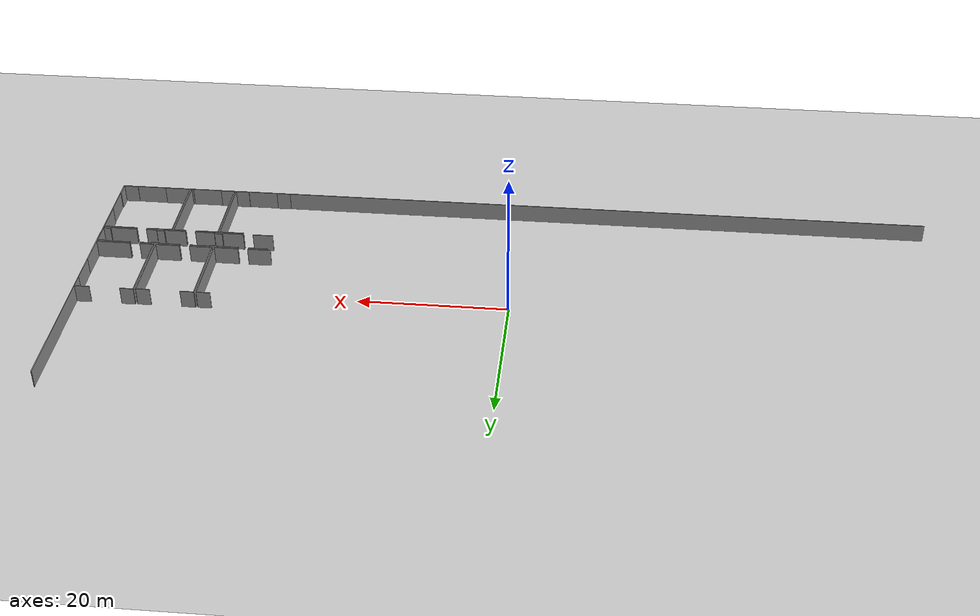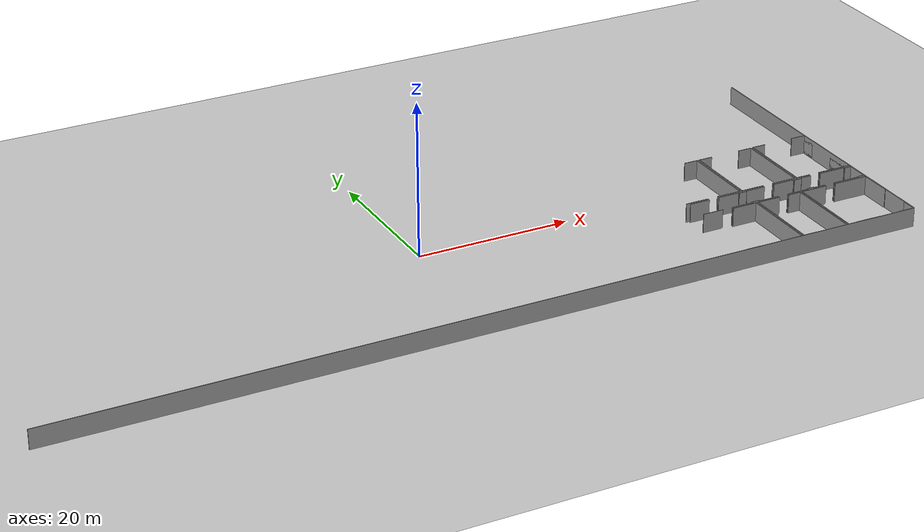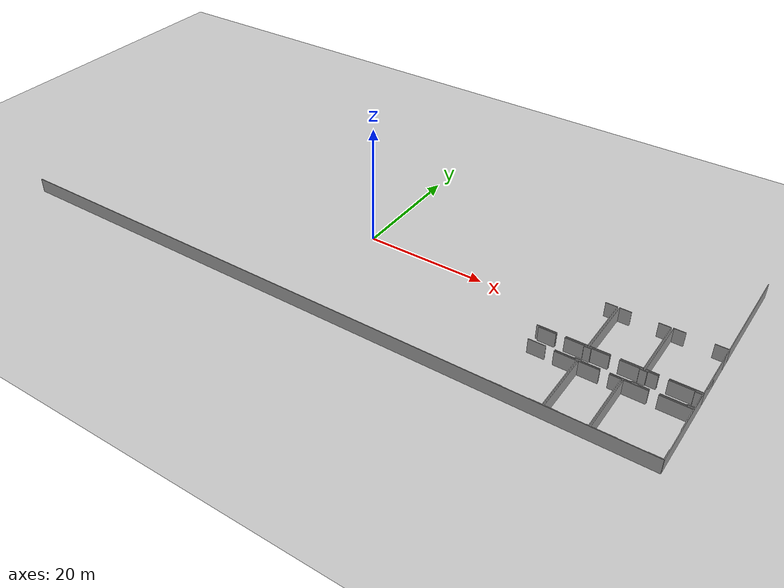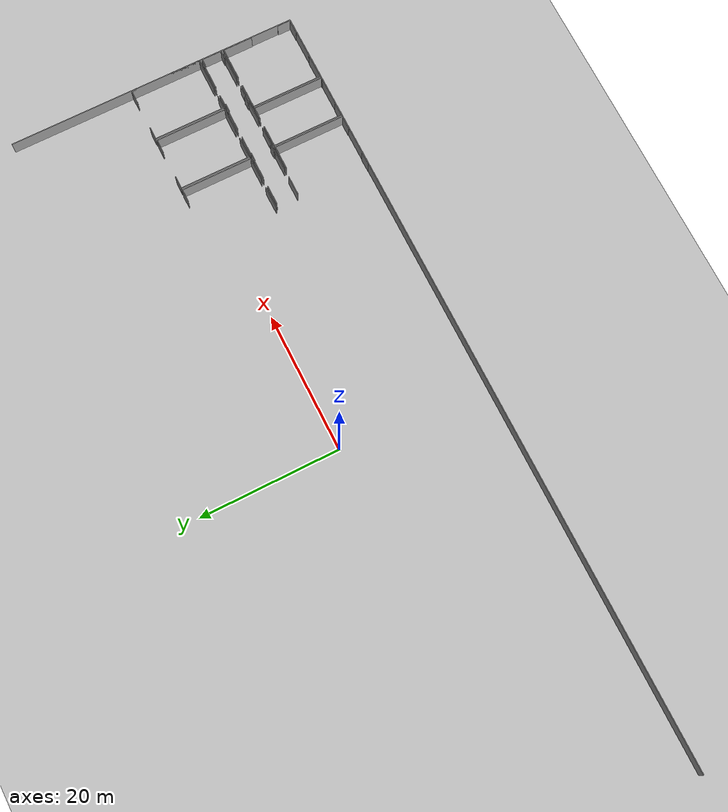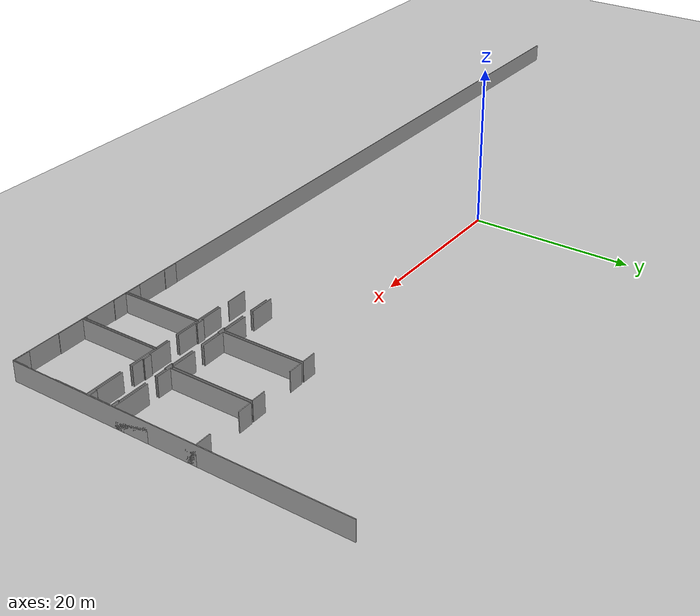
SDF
<sdf version="1.6">
 <world name="default">
  <model name="ground_plane">
   <static>1</static>
   <link name="link">
    <collision name="collision">
     <geometry><plane><normal>0 0 1</normal><size>100 100</size></plane></geometry>
     <surface><friction><ode><mu>100</mu><mu2>50</mu2></ode></friction></surface>
    </collision>
    <visual name="visual">
     <cast_shadows>0</cast_shadows>
     <geometry><plane><normal>0 0 1</normal><size>100 100</size></plane></geometry>
     <material>
      <script><uri>file://media/materials/scripts/gazebo.material</uri><name>Gazebo/Grey</name></script>
     </material>
    </visual>
   </link>
  </model>
  <model name="50057025">
   <static>1</static>
   <link name="Wall_118">
    <collision name="Wall_118_Collision">
     <geometry><box><size>3.32393096032 0.1 2.5</size></box></geometry>
     <pose>1.66196548016 0 1.25 0 0 0</pose>
    </collision>
    <visual name="Wall_118_Visual">
     <pose>1.66196548016 0 1.25 0 0 0</pose>
     <geometry><box><size>3.32393096032 0.1 2.5</size></box></geometry>
     <material>
      <script><uri>file://media/materials/scripts/gazebo.material</uri><name>Gazebo/Grey</name></script>
      <ambient>1 1 1 1</ambient>
     </material>
    </visual>
    <pose>93.1748144752 -31.5781674112 0 0 0 0.0</pose>
   </link>
   <link name="Wall_119">
    <collision name="Wall_119_Collision">
     <geometry><box><size>10.1226446042 0.1 2.5</size></box></geometry>
     <pose>5.06132230212 0 1.25 0 0 0</pose>
    </collision>
    <visual name="Wall_119_Visual">
     <pose>5.06132230212 0 1.25 0 0 0</pose>
     <geometry><box><size>10.1226446042 0.1 2.5</size></box></geometry>
     <material>
      <script><uri>file://media/materials/scripts/gazebo.material</uri><name>Gazebo/Grey</name></script>
      <ambient>1 1 1 1</ambient>
     </material>
    </visual>
    <pose>96.4987454355 -31.5781674112 0 0 0 -1.57079632679</pose>
   </link>
   <link name="Wall_120">
    <collision name="Wall_120_Collision">
     <geometry><box><size>1.87076402408 0.1 2.5</size></box></geometry>
     <pose>0.93538201204 0 1.25 0 0 0</pose>
    </collision>
    <visual name="Wall_120_Visual">
     <pose>0.93538201204 0 1.25 0 0 0</pose>
     <geometry><box><size>1.87076402408 0.1 2.5</size></box></geometry>
     <material>
      <script><uri>file://media/materials/scripts/gazebo.material</uri><name>Gazebo/Grey</name></script>
      <ambient>1 1 1 1</ambient>
     </material>
    </visual>
    <pose>96.4987454355 -41.7008120154 0 0 0 3.14159265359</pose>
   </link>
   <link name="Wall_121">
    <collision name="Wall_121_Collision">
     <geometry><box><size>1.88354864931 0.1 2.5</size></box></geometry>
     <pose>0.941774324656 0 1.25 0 0 0</pose>
    </collision>
    <visual name="Wall_121_Visual">
     <pose>0.941774324656 0 1.25 0 0 0</pose>
     <geometry><box><size>1.88354864931 0.1 2.5</size></box></geometry>
     <material>
      <script><uri>file://media/materials/scripts/gazebo.material</uri><name>Gazebo/Grey</name></script>
      <ambient>1 1 1 1</ambient>
     </material>
    </visual>
    <pose>90.6055221104 -41.7008120154 0 0 0 -3.12545309069</pose>
   </link>
   <link name="Wall_122">
    <collision name="Wall_122_Collision">
     <geometry><box><size>10.1510163809 0.1 2.5</size></box></geometry>
     <pose>5.07550819045 0 1.25 0 0 0</pose>
    </collision>
    <visual name="Wall_122_Visual">
     <pose>5.07550819045 0 1.25 0 0 0</pose>
     <geometry><box><size>10.1510163809 0.1 2.5</size></box></geometry>
     <material>
      <script><uri>file://media/materials/scripts/gazebo.material</uri><name>Gazebo/Grey</name></script>
      <ambient>1 1 1 1</ambient>
     </material>
    </visual>
    <pose>96.763717564 -41.7199376328 0 0 0 1.57079632679</pose>
   </link>
   <link name="Wall_123">
    <collision name="Wall_123_Collision">
     <geometry><box><size>3.12127541269 0.1 2.5</size></box></geometry>
     <pose>1.56063770634 0 1.25 0 0 0</pose>
    </collision>
    <visual name="Wall_123_Visual">
     <pose>1.56063770634 0 1.25 0 0 0</pose>
     <geometry><box><size>3.12127541269 0.1 2.5</size></box></geometry>
     <material>
      <script><uri>file://media/materials/scripts/gazebo.material</uri><name>Gazebo/Grey</name></script>
      <ambient>1 1 1 1</ambient>
     </material>
    </visual>
    <pose>96.763717564 -31.5689212519 0 0 0 0.0</pose>
   </link>
   <link name="Wall_124">
    <collision name="Wall_124_Collision">
     <geometry><box><size>1.69901344746 0.1 2.5</size></box></geometry>
     <pose>0.849506723731 0 1.25 0 0 0</pose>
    </collision>
    <visual name="Wall_124_Visual">
     <pose>0.849506723731 0 1.25 0 0 0</pose>
     <geometry><box><size>1.69901344746 0.1 2.5</size></box></geometry>
     <material>
      <script><uri>file://media/materials/scripts/gazebo.material</uri><name>Gazebo/Grey</name></script>
      <ambient>1 1 1 1</ambient>
     </material>
    </visual>
    <pose>101.231259112 -31.5689212519 0 0 0 0.0</pose>
   </link>
   <link name="Wall_125">
    <collision name="Wall_125_Collision">
     <geometry><box><size>10.1351839162 0.1 2.5</size></box></geometry>
     <pose>5.06759195812 0 1.25 0 0 0</pose>
    </collision>
    <visual name="Wall_125_Visual">
     <pose>5.06759195812 0 1.25 0 0 0</pose>
     <geometry><box><size>10.1351839162 0.1 2.5</size></box></geometry>
     <material>
      <script><uri>file://media/materials/scripts/gazebo.material</uri><name>Gazebo/Grey</name></script>
      <ambient>1 1 1 1</ambient>
     </material>
    </visual>
    <pose>102.930272559 -31.5689212519 0 0 0 -1.57079632679</pose>
   </link>
   <link name="Wall_126">
    <collision name="Wall_126_Collision">
     <geometry><box><size>0.265225447964 0.1 2.5</size></box></geometry>
     <pose>0.132612723982 0 1.25 0 0 0</pose>
    </collision>
    <visual name="Wall_126_Visual">
     <pose>0.132612723982 0 1.25 0 0 0</pose>
     <geometry><box><size>0.265225447964 0.1 2.5</size></box></geometry>
     <material>
      <script><uri>file://media/materials/scripts/gazebo.material</uri><name>Gazebo/Grey</name></script>
      <ambient>1 1 1 1</ambient>
     </material>
    </visual>
    <pose>102.930272559 -41.7041051681 0 0 0 3.14159265359</pose>
   </link>
   <link name="Wall_127">
    <collision name="Wall_127_Collision">
     <geometry><box><size>1.89008261337 0.1 2.5</size></box></geometry>
     <pose>0.945041306687 0 1.25 0 0 0</pose>
    </collision>
    <visual name="Wall_127_Visual">
     <pose>0.945041306687 0 1.25 0 0 0</pose>
     <geometry><box><size>1.89008261337 0.1 2.5</size></box></geometry>
     <material>
      <script><uri>file://media/materials/scripts/gazebo.material</uri><name>Gazebo/Grey</name></script>
      <ambient>1 1 1 1</ambient>
     </material>
    </visual>
    <pose>98.6537338651 -41.7041051681 0 0 0 -3.13321595635</pose>
   </link>
   <link name="Wall_128">
    <collision name="Wall_128_Collision">
     <geometry><box><size>10.1715352551 0.1 2.5</size></box></geometry>
     <pose>5.08576762755 0 1.25 0 0 0</pose>
    </collision>
    <visual name="Wall_128_Visual">
     <pose>5.08576762755 0 1.25 0 0 0</pose>
     <geometry><box><size>10.1715352551 0.1 2.5</size></box></geometry>
     <material>
      <script><uri>file://media/materials/scripts/gazebo.material</uri><name>Gazebo/Grey</name></script>
      <ambient>1 1 1 1</ambient>
     </material>
    </visual>
    <pose>103.196764604 -41.7370366946 0 0 0 1.57079632679</pose>
   </link>
   <link name="Wall_129">
    <collision name="Wall_129_Collision">
     <geometry><box><size>3.5364659659 0.1 2.5</size></box></geometry>
     <pose>1.76823298295 0 1.25 0 0 0</pose>
    </collision>
    <visual name="Wall_129_Visual">
     <pose>1.76823298295 0 1.25 0 0 0</pose>
     <geometry><box><size>3.5364659659 0.1 2.5</size></box></geometry>
     <material>
      <script><uri>file://media/materials/scripts/gazebo.material</uri><name>Gazebo/Grey</name></script>
      <ambient>1 1 1 1</ambient>
     </material>
    </visual>
    <pose>103.196764604 -31.5655014395 0 0 0 0.0</pose>
   </link>
   <link name="Wall_130">
    <collision name="Wall_130_Collision">
     <geometry><box><size>4.61041370863 0.1 2.5</size></box></geometry>
     <pose>2.30520685432 0 1.25 0 0 0</pose>
    </collision>
    <visual name="Wall_130_Visual">
     <pose>2.30520685432 0 1.25 0 0 0</pose>
     <geometry><box><size>4.61041370863 0.1 2.5</size></box></geometry>
     <material>
      <script><uri>file://media/materials/scripts/gazebo.material</uri><name>Gazebo/Grey</name></script>
      <ambient>1 1 1 1</ambient>
     </material>
    </visual>
    <pose>108.085956351 -31.5655014395 0 0 0 0.0</pose>
   </link>
   <link name="Wall_131">
    <collision name="Wall_131_Collision">
     <geometry><box><size>4.24386048685 0.1 2.5</size></box></geometry>
     <pose>2.12193024343 0 1.25 0 0 0</pose>
    </collision>
    <visual name="Wall_131_Visual">
     <pose>2.12193024343 0 1.25 0 0 0</pose>
     <geometry><box><size>4.24386048685 0.1 2.5</size></box></geometry>
     <material>
      <script><uri>file://media/materials/scripts/gazebo.material</uri><name>Gazebo/Grey</name></script>
      <ambient>1 1 1 1</ambient>
     </material>
    </visual>
    <pose>112.696370059 -31.5655014395 0 0 0 -1.57079632679</pose>
   </link>
   <link name="Wall_132">
    <collision name="Wall_132_Collision">
     <geometry><box><size>1.89634928697 0.1 2.5</size></box></geometry>
     <pose>0.948174643485 0 1.25 0 0 0</pose>
    </collision>
    <visual name="Wall_132_Visual">
     <pose>0.948174643485 0 1.25 0 0 0</pose>
     <geometry><box><size>1.89634928697 0.1 2.5</size></box></geometry>
     <material>
      <script><uri>file://media/materials/scripts/gazebo.material</uri><name>Gazebo/Grey</name></script>
      <ambient>1 1 1 1</ambient>
     </material>
    </visual>
    <pose>112.696370059 -39.807375902 0 0 0 -1.57079632679</pose>
   </link>
   <link name="Wall_133">
    <collision name="Wall_133_Collision">
     <geometry><box><size>1.97082520072 0.1 2.5</size></box></geometry>
     <pose>0.985412600362 0 1.25 0 0 0</pose>
    </collision>
    <visual name="Wall_133_Visual">
     <pose>0.985412600362 0 1.25 0 0 0</pose>
     <geometry><box><size>1.97082520072 0.1 2.5</size></box></geometry>
     <material>
      <script><uri>file://media/materials/scripts/gazebo.material</uri><name>Gazebo/Grey</name></script>
      <ambient>1 1 1 1</ambient>
     </material>
    </visual>
    <pose>112.696370059 -41.7037251889 0 0 0 3.14159265359</pose>
   </link>
   <link name="Wall_134">
    <collision name="Wall_134_Collision">
     <geometry><box><size>3.51129203855 0.1 2.5</size></box></geometry>
     <pose>1.75564601928 0 1.25 0 0 0</pose>
    </collision>
    <visual name="Wall_134_Visual">
     <pose>1.75564601928 0 1.25 0 0 0</pose>
     <geometry><box><size>3.51129203855 0.1 2.5</size></box></geometry>
     <material>
      <script><uri>file://media/materials/scripts/gazebo.material</uri><name>Gazebo/Grey</name></script>
      <ambient>1 1 1 1</ambient>
     </material>
    </visual>
    <pose>106.707898627 -41.7037251889 0 0 0 -3.132105546</pose>
   </link>
   <link name="Wall_135">
    <collision name="Wall_135_Collision">
     <geometry><box><size>10.1968671986 0.1 2.5</size></box></geometry>
     <pose>5.09843359928 0 1.25 0 0 0</pose>
    </collision>
    <visual name="Wall_135_Visual">
     <pose>5.09843359928 0 1.25 0 0 0</pose>
     <geometry><box><size>10.1968671986 0.1 2.5</size></box></geometry>
     <material>
      <script><uri>file://media/materials/scripts/gazebo.material</uri><name>Gazebo/Grey</name></script>
      <ambient>1 1 1 1</ambient>
     </material>
    </visual>
    <pose>104.84726738 -27.8936362358 0 0 0 1.57079632679</pose>
   </link>
   <link name="Wall_136">
    <collision name="Wall_136_Collision">
     <geometry><box><size>1.82263333152 0.1 2.5</size></box></geometry>
     <pose>0.911316665759 0 1.25 0 0 0</pose>
    </collision>
    <visual name="Wall_136_Visual">
     <pose>0.911316665759 0 1.25 0 0 0</pose>
     <geometry><box><size>1.82263333152 0.1 2.5</size></box></geometry>
     <material>
      <script><uri>file://media/materials/scripts/gazebo.material</uri><name>Gazebo/Grey</name></script>
      <ambient>1 1 1 1</ambient>
     </material>
    </visual>
    <pose>104.84726738 -17.6967690373 0 0 0 0.0</pose>
   </link>
   <link name="Wall_137">
    <collision name="Wall_137_Collision">
     <geometry><box><size>2.02655547632 0.1 2.5</size></box></geometry>
     <pose>1.01327773816 0 1.25 0 0 0</pose>
    </collision>
    <visual name="Wall_137_Visual">
     <pose>1.01327773816 0 1.25 0 0 0</pose>
     <geometry><box><size>2.02655547632 0.1 2.5</size></box></geometry>
     <material>
      <script><uri>file://media/materials/scripts/gazebo.material</uri><name>Gazebo/Grey</name></script>
      <ambient>1 1 1 1</ambient>
     </material>
    </visual>
    <pose>110.740744025 -17.6967690373 0 0 0 0.0</pose>
   </link>
   <link name="Wall_138">
    <collision name="Wall_138_Collision">
     <geometry><box><size>1.93802033395 0.1 2.5</size></box></geometry>
     <pose>0.969010166976 0 1.25 0 0 0</pose>
    </collision>
    <visual name="Wall_138_Visual">
     <pose>0.969010166976 0 1.25 0 0 0</pose>
     <geometry><box><size>1.93802033395 0.1 2.5</size></box></geometry>
     <material>
      <script><uri>file://media/materials/scripts/gazebo.material</uri><name>Gazebo/Grey</name></script>
      <ambient>1 1 1 1</ambient>
     </material>
    </visual>
    <pose>112.767299501 -17.6967690373 0 0 0 -1.57079632679</pose>
   </link>
   <link name="Wall_139">
    <collision name="Wall_139_Collision">
     <geometry><box><size>4.22612812644 0.1 2.5</size></box></geometry>
     <pose>2.11306406322 0 1.25 0 0 0</pose>
    </collision>
    <visual name="Wall_139_Visual">
     <pose>2.11306406322 0 1.25 0 0 0</pose>
     <geometry><box><size>4.22612812644 0.1 2.5</size></box></geometry>
     <material>
      <script><uri>file://media/materials/scripts/gazebo.material</uri><name>Gazebo/Grey</name></script>
      <ambient>1 1 1 1</ambient>
     </material>
    </visual>
    <pose>112.767299501 -23.6858737684 0 0 0 -1.57079632679</pose>
   </link>
   <link name="Wall_140">
    <collision name="Wall_140_Collision">
     <geometry><box><size>4.64587842947 0.1 2.5</size></box></geometry>
     <pose>2.32293921474 0 1.25 0 0 0</pose>
    </collision>
    <visual name="Wall_140_Visual">
     <pose>2.32293921474 0 1.25 0 0 0</pose>
     <geometry><box><size>4.64587842947 0.1 2.5</size></box></geometry>
     <material>
      <script><uri>file://media/materials/scripts/gazebo.material</uri><name>Gazebo/Grey</name></script>
      <ambient>1 1 1 1</ambient>
     </material>
    </visual>
    <pose>112.767299501 -27.9120018948 0 0 0 3.14159265359</pose>
   </link>
   <link name="Wall_141">
    <collision name="Wall_141_Collision">
     <geometry><box><size>1.91138336949 0.1 2.5</size></box></geometry>
     <pose>0.955691684747 0 1.25 0 0 0</pose>
    </collision>
    <visual name="Wall_141_Visual">
     <pose>0.955691684747 0 1.25 0 0 0</pose>
     <geometry><box><size>1.91138336949 0.1 2.5</size></box></geometry>
     <material>
      <script><uri>file://media/materials/scripts/gazebo.material</uri><name>Gazebo/Grey</name></script>
      <ambient>1 1 1 1</ambient>
     </material>
    </visual>
    <pose>106.758562514 -27.9120018948 0 0 0 3.13198393673</pose>
   </link>
   <link name="Wall_142">
    <collision name="Wall_142_Collision">
     <geometry><box><size>10.1345506177 0.1 2.5</size></box></geometry>
     <pose>5.06727530883 0 1.25 0 0 0</pose>
    </collision>
    <visual name="Wall_142_Visual">
     <pose>5.06727530883 0 1.25 0 0 0</pose>
     <geometry><box><size>10.1345506177 0.1 2.5</size></box></geometry>
     <material>
      <script><uri>file://media/materials/scripts/gazebo.material</uri><name>Gazebo/Grey</name></script>
      <ambient>1 1 1 1</ambient>
     </material>
    </visual>
    <pose>96.7900627852 -27.8903430832 0 0 0 1.57079632679</pose>
   </link>
   <link name="Wall_143">
    <collision name="Wall_143_Collision">
     <geometry><box><size>1.85151174706 0.1 2.5</size></box></geometry>
     <pose>0.925755873528 0 1.25 0 0 0</pose>
    </collision>
    <visual name="Wall_143_Visual">
     <pose>0.925755873528 0 1.25 0 0 0</pose>
     <geometry><box><size>1.85151174706 0.1 2.5</size></box></geometry>
     <material>
      <script><uri>file://media/materials/scripts/gazebo.material</uri><name>Gazebo/Grey</name></script>
      <ambient>1 1 1 1</ambient>
     </material>
    </visual>
    <pose>96.7900627852 -17.7557924655 0 0 0 0.0</pose>
   </link>
   <link name="Wall_144">
    <collision name="Wall_144_Collision">
     <geometry><box><size>1.84986517073 0.1 2.5</size></box></geometry>
     <pose>0.924932585365 0 1.25 0 0 0</pose>
    </collision>
    <visual name="Wall_144_Visual">
     <pose>0.924932585365 0 1.25 0 0 0</pose>
     <geometry><box><size>1.84986517073 0.1 2.5</size></box></geometry>
     <material>
      <script><uri>file://media/materials/scripts/gazebo.material</uri><name>Gazebo/Grey</name></script>
      <ambient>1 1 1 1</ambient>
     </material>
    </visual>
    <pose>102.690885693 -17.7557924655 0 0 0 0.0</pose>
   </link>
   <link name="Wall_145">
    <collision name="Wall_145_Collision">
     <geometry><box><size>10.1232779028 0.1 2.5</size></box></geometry>
     <pose>5.06163895141 0 1.25 0 0 0</pose>
    </collision>
    <visual name="Wall_145_Visual">
     <pose>5.06163895141 0 1.25 0 0 0</pose>
     <geometry><box><size>10.1232779028 0.1 2.5</size></box></geometry>
     <material>
      <script><uri>file://media/materials/scripts/gazebo.material</uri><name>Gazebo/Grey</name></script>
      <ambient>1 1 1 1</ambient>
     </material>
    </visual>
    <pose>104.540750864 -17.7557924655 0 0 0 -1.57079632679</pose>
   </link>
   <link name="Wall_146">
    <collision name="Wall_146_Collision">
     <geometry><box><size>3.29188605185 0.1 2.5</size></box></geometry>
     <pose>1.64594302593 0 1.25 0 0 0</pose>
    </collision>
    <visual name="Wall_146_Visual">
     <pose>1.64594302593 0 1.25 0 0 0</pose>
     <geometry><box><size>3.29188605185 0.1 2.5</size></box></geometry>
     <material>
      <script><uri>file://media/materials/scripts/gazebo.material</uri><name>Gazebo/Grey</name></script>
      <ambient>1 1 1 1</ambient>
     </material>
    </visual>
    <pose>104.540750864 -27.8790703683 0 0 0 3.14159265359</pose>
   </link>
   <link name="Wall_147">
    <collision name="Wall_147_Collision">
     <geometry><box><size>3.08342476329 0.1 2.5</size></box></geometry>
     <pose>1.54171238165 0 1.25 0 0 0</pose>
    </collision>
    <visual name="Wall_147_Visual">
     <pose>1.54171238165 0 1.25 0 0 0</pose>
     <geometry><box><size>3.08342476329 0.1 2.5</size></box></geometry>
     <material>
      <script><uri>file://media/materials/scripts/gazebo.material</uri><name>Gazebo/Grey</name></script>
      <ambient>1 1 1 1</ambient>
     </material>
    </visual>
    <pose>99.8734669424 -27.8790703683 0 0 0 -3.13793673823</pose>
   </link>
   <link name="Wall_150">
    <collision name="Wall_150_Collision">
     <geometry><box><size>1.85075178875 0.1 2.5</size></box></geometry>
     <pose>0.925375894376 0 1.25 0 0 0</pose>
    </collision>
    <visual name="Wall_150_Visual">
     <pose>0.925375894376 0 1.25 0 0 0</pose>
     <geometry><box><size>1.85075178875 0.1 2.5</size></box></geometry>
     <material>
      <script><uri>file://media/materials/scripts/gazebo.material</uri><name>Gazebo/Grey</name></script>
      <ambient>1 1 1 1</ambient>
     </material>
    </visual>
    <pose>94.6312745641 -17.7575657016 0 0 0 0.0</pose>
   </link>
   <link name="Wall_151">
    <collision name="Wall_151_Collision">
     <geometry><box><size>10.1382237495 0.1 2.5</size></box></geometry>
     <pose>5.06911187473 0 1.25 0 0 0</pose>
    </collision>
    <visual name="Wall_151_Visual">
     <pose>5.06911187473 0 1.25 0 0 0</pose>
     <geometry><box><size>10.1382237495 0.1 2.5</size></box></geometry>
     <material>
      <script><uri>file://media/materials/scripts/gazebo.material</uri><name>Gazebo/Grey</name></script>
      <ambient>1 1 1 1</ambient>
     </material>
    </visual>
    <pose>96.4820263528 -17.7575657016 0 0 0 -1.57079632679</pose>
   </link>
   <link name="Wall_152">
    <collision name="Wall_152_Collision">
     <geometry><box><size>3.30391872499 0.1 2.5</size></box></geometry>
     <pose>1.6519593625 0 1.25 0 0 0</pose>
    </collision>
    <visual name="Wall_152_Visual">
     <pose>1.6519593625 0 1.25 0 0 0</pose>
     <geometry><box><size>3.30391872499 0.1 2.5</size></box></geometry>
     <material>
      <script><uri>file://media/materials/scripts/gazebo.material</uri><name>Gazebo/Grey</name></script>
      <ambient>1 1 1 1</ambient>
     </material>
    </visual>
    <pose>96.4820263528 -27.895789451 0 0 0 3.14159265359</pose>
   </link>
   <link name="Wall_153">
    <collision name="Wall_153_Collision">
     <geometry><box><size>3.14010108133 0.1 2.5</size></box></geometry>
     <pose>1.57005054067 0 1.25 0 0 0</pose>
    </collision>
    <visual name="Wall_153_Visual">
     <pose>1.57005054067 0 1.25 0 0 0</pose>
     <geometry><box><size>3.14010108133 0.1 2.5</size></box></geometry>
     <material>
      <script><uri>file://media/materials/scripts/gazebo.material</uri><name>Gazebo/Grey</name></script>
      <ambient>1 1 1 1</ambient>
     </material>
    </visual>
    <pose>91.8538802838 -27.895789451 0 0 0 -3.13445308711</pose>
   </link>
   <link name="Wall_178">
    <collision name="Wall_178_Collision">
     <geometry><box><size>2.7032983457 0.1 2.5</size></box></geometry>
     <pose>1.35164917285 0 1.25 0 0 0</pose>
    </collision>
    <visual name="Wall_178_Visual">
     <pose>1.35164917285 0 1.25 0 0 0</pose>
     <geometry><box><size>2.7032983457 0.1 2.5</size></box></geometry>
     <material>
      <script><uri>file://media/materials/scripts/gazebo.material</uri><name>Gazebo/Grey</name></script>
      <ambient>1 1 1 1</ambient>
     </material>
    </visual>
    <pose>89.1305697027 -28.196859599 0 0 0 0.0</pose>
   </link>
   <link name="Wall_179">
    <collision name="Wall_179_Collision">
     <geometry><box><size>2.91697328873 0.1 2.5</size></box></geometry>
     <pose>1.45848664437 0 1.25 0 0 0</pose>
    </collision>
    <visual name="Wall_179_Visual">
     <pose>1.45848664437 0 1.25 0 0 0</pose>
     <geometry><box><size>2.91697328873 0.1 2.5</size></box></geometry>
     <material>
      <script><uri>file://media/materials/scripts/gazebo.material</uri><name>Gazebo/Grey</name></script>
      <ambient>1 1 1 1</ambient>
     </material>
    </visual>
    <pose>93.1863405095 -28.196859599 0 0 0 0.0</pose>
   </link>
   <link name="Wall_180">
    <collision name="Wall_180_Collision">
     <geometry><box><size>0.106774141659 0.1 2.5</size></box></geometry>
     <pose>0.0533870708294 0 1.25 0 0 0</pose>
    </collision>
    <visual name="Wall_180_Visual">
     <pose>0.0533870708294 0 1.25 0 0 0</pose>
     <geometry><box><size>0.106774141659 0.1 2.5</size></box></geometry>
     <material>
      <script><uri>file://media/materials/scripts/gazebo.material</uri><name>Gazebo/Grey</name></script>
      <ambient>1 1 1 1</ambient>
     </material>
    </visual>
    <pose>96.1033137982 -28.196859599 0 0 0 -1.57079632679</pose>
   </link>
   <link name="Wall_181">
    <collision name="Wall_181_Collision">
     <geometry><box><size>1.05165563249 0.1 2.5</size></box></geometry>
     <pose>0.525827816247 0 1.25 0 0 0</pose>
    </collision>
    <visual name="Wall_181_Visual">
     <pose>0.525827816247 0 1.25 0 0 0</pose>
     <geometry><box><size>1.05165563249 0.1 2.5</size></box></geometry>
     <material>
      <script><uri>file://media/materials/scripts/gazebo.material</uri><name>Gazebo/Grey</name></script>
      <ambient>1 1 1 1</ambient>
     </material>
    </visual>
    <pose>96.1033137982 -28.3036337406 0 0 0 0.0</pose>
   </link>
   <link name="Wall_182">
    <collision name="Wall_182_Collision">
     <geometry><box><size>0.113360446957 0.1 2.5</size></box></geometry>
     <pose>0.0566802234784 0 1.25 0 0 0</pose>
    </collision>
    <visual name="Wall_182_Visual">
     <pose>0.0566802234784 0 1.25 0 0 0</pose>
     <geometry><box><size>0.113360446957 0.1 2.5</size></box></geometry>
     <material>
      <script><uri>file://media/materials/scripts/gazebo.material</uri><name>Gazebo/Grey</name></script>
      <ambient>1 1 1 1</ambient>
     </material>
    </visual>
    <pose>97.1549694307 -28.3036337406 0 0 0 1.57079632679</pose>
   </link>
   <link name="Wall_183">
    <collision name="Wall_183_Collision">
     <geometry><box><size>2.69633206125 0.1 2.5</size></box></geometry>
     <pose>1.34816603062 0 1.25 0 0 0</pose>
    </collision>
    <visual name="Wall_183_Visual">
     <pose>1.34816603062 0 1.25 0 0 0</pose>
     <geometry><box><size>2.69633206125 0.1 2.5</size></box></geometry>
     <material>
      <script><uri>file://media/materials/scripts/gazebo.material</uri><name>Gazebo/Grey</name></script>
      <ambient>1 1 1 1</ambient>
     </material>
    </visual>
    <pose>97.1549694307 -28.1902732937 0 0 0 0.0</pose>
   </link>
   <link name="Wall_184">
    <collision name="Wall_184_Collision">
     <geometry><box><size>2.92317961488 0.1 2.5</size></box></geometry>
     <pose>1.46158980744 0 1.25 0 0 0</pose>
    </collision>
    <visual name="Wall_184_Visual">
     <pose>1.46158980744 0 1.25 0 0 0</pose>
     <geometry><box><size>2.92317961488 0.1 2.5</size></box></geometry>
     <material>
      <script><uri>file://media/materials/scripts/gazebo.material</uri><name>Gazebo/Grey</name></script>
      <ambient>1 1 1 1</ambient>
     </material>
    </visual>
    <pose>101.247978194 -28.1902732937 0 0 0 0.0</pose>
   </link>
   <link name="Wall_185">
    <collision name="Wall_185_Collision">
     <geometry><box><size>0.138565730694 0.1 2.5</size></box></geometry>
     <pose>0.0692828653468 0 1.25 0 0 0</pose>
    </collision>
    <visual name="Wall_185_Visual">
     <pose>0.0692828653468 0 1.25 0 0 0</pose>
     <geometry><box><size>0.138565730694 0.1 2.5</size></box></geometry>
     <material>
      <script><uri>file://media/materials/scripts/gazebo.material</uri><name>Gazebo/Grey</name></script>
      <ambient>1 1 1 1</ambient>
     </material>
    </visual>
    <pose>104.171157809 -28.1902732937 0 0 0 -1.57079632679</pose>
   </link>
   <link name="Wall_186">
    <collision name="Wall_186_Collision">
     <geometry><box><size>1.04975573674 0.1 2.5</size></box></geometry>
     <pose>0.524877868368 0 1.25 0 0 0</pose>
    </collision>
    <visual name="Wall_186_Visual">
     <pose>0.524877868368 0 1.25 0 0 0</pose>
     <geometry><box><size>1.04975573674 0.1 2.5</size></box></geometry>
     <material>
      <script><uri>file://media/materials/scripts/gazebo.material</uri><name>Gazebo/Grey</name></script>
      <ambient>1 1 1 1</ambient>
     </material>
    </visual>
    <pose>104.171157809 -28.3288390244 0 0 0 0.0</pose>
   </link>
   <link name="Wall_187">
    <collision name="Wall_187_Collision">
     <geometry><box><size>0.141605563908 0.1 2.5</size></box></geometry>
     <pose>0.070802781954 0 1.25 0 0 0</pose>
    </collision>
    <visual name="Wall_187_Visual">
     <pose>0.070802781954 0 1.25 0 0 0</pose>
     <geometry><box><size>0.141605563908 0.1 2.5</size></box></geometry>
     <material>
      <script><uri>file://media/materials/scripts/gazebo.material</uri><name>Gazebo/Grey</name></script>
      <ambient>1 1 1 1</ambient>
     </material>
    </visual>
    <pose>105.220913546 -28.3288390244 0 0 0 1.57079632679</pose>
   </link>
   <link name="Wall_188">
    <collision name="Wall_188_Collision">
     <geometry><box><size>1.51865001007 0.1 2.5</size></box></geometry>
     <pose>0.759325005035 0 1.25 0 0 0</pose>
    </collision>
    <visual name="Wall_188_Visual">
     <pose>0.759325005035 0 1.25 0 0 0</pose>
     <geometry><box><size>1.51865001007 0.1 2.5</size></box></geometry>
     <material>
      <script><uri>file://media/materials/scripts/gazebo.material</uri><name>Gazebo/Grey</name></script>
      <ambient>1 1 1 1</ambient>
     </material>
    </visual>
    <pose>105.220913546 -28.1872334605 0 0 0 0.0</pose>
   </link>
   <link name="Wall_189">
    <collision name="Wall_189_Collision">
     <geometry><box><size>3.61613492806 0.1 2.5</size></box></geometry>
     <pose>1.80806746403 0 1.25 0 0 0</pose>
    </collision>
    <visual name="Wall_189_Visual">
     <pose>1.80806746403 0 1.25 0 0 0</pose>
     <geometry><box><size>3.61613492806 0.1 2.5</size></box></geometry>
     <material>
      <script><uri>file://media/materials/scripts/gazebo.material</uri><name>Gazebo/Grey</name></script>
      <ambient>1 1 1 1</ambient>
     </material>
    </visual>
    <pose>108.112554891 -28.1872334605 0 0 0 0.0</pose>
   </link>
   <link name="Wall_190">
    <collision name="Wall_190_Collision">
     <geometry><box><size>0.121973307731 0.1 2.5</size></box></geometry>
     <pose>0.0609866538656 0 1.25 0 0 0</pose>
    </collision>
    <visual name="Wall_190_Visual">
     <pose>0.0609866538656 0 1.25 0 0 0</pose>
     <geometry><box><size>0.121973307731 0.1 2.5</size></box></geometry>
     <material>
      <script><uri>file://media/materials/scripts/gazebo.material</uri><name>Gazebo/Grey</name></script>
      <ambient>1 1 1 1</ambient>
     </material>
    </visual>
    <pose>111.728689819 -28.1872334605 0 0 0 -1.57079632679</pose>
   </link>
   <link name="Wall_191">
    <collision name="Wall_191_Collision">
     <geometry><box><size>0.984146003189 0.1 2.5</size></box></geometry>
     <pose>0.492073001595 0 1.25 0 0 0</pose>
    </collision>
    <visual name="Wall_191_Visual">
     <pose>0.492073001595 0 1.25 0 0 0</pose>
     <geometry><box><size>0.984146003189 0.1 2.5</size></box></geometry>
     <material>
      <script><uri>file://media/materials/scripts/gazebo.material</uri><name>Gazebo/Grey</name></script>
      <ambient>1 1 1 1</ambient>
     </material>
    </visual>
    <pose>111.728689819 -28.3092067682 0 0 0 0.0</pose>
   </link>
   <link name="Wall_192">
    <collision name="Wall_192_Collision">
     <geometry><box><size>2.85111023575 0.1 2.5</size></box></geometry>
     <pose>1.42555511788 0 1.25 0 0 0</pose>
    </collision>
    <visual name="Wall_192_Visual">
     <pose>1.42555511788 0 1.25 0 0 0</pose>
     <geometry><box><size>2.85111023575 0.1 2.5</size></box></geometry>
     <material>
      <script><uri>file://media/materials/scripts/gazebo.material</uri><name>Gazebo/Grey</name></script>
      <ambient>1 1 1 1</ambient>
     </material>
    </visual>
    <pose>112.712835822 -28.3092067682 0 0 0 -1.57079632679</pose>
   </link>
   <link name="Wall_193">
    <collision name="Wall_193_Collision">
     <geometry><box><size>0.971480031462 0.1 2.5</size></box></geometry>
     <pose>0.485740015731 0 1.25 0 0 0</pose>
    </collision>
    <visual name="Wall_193_Visual">
     <pose>0.485740015731 0 1.25 0 0 0</pose>
     <geometry><box><size>0.971480031462 0.1 2.5</size></box></geometry>
     <material>
      <script><uri>file://media/materials/scripts/gazebo.material</uri><name>Gazebo/Grey</name></script>
      <ambient>1 1 1 1</ambient>
     </material>
    </visual>
    <pose>112.712835822 -31.1603170039 0 0 0 3.14159265359</pose>
   </link>
   <link name="Wall_194">
    <collision name="Wall_194_Collision">
     <geometry><box><size>0.125013140946 0.1 2.5</size></box></geometry>
     <pose>0.0625065704728 0 1.25 0 0 0</pose>
    </collision>
    <visual name="Wall_194_Visual">
     <pose>0.0625065704728 0 1.25 0 0 0</pose>
     <geometry><box><size>0.125013140946 0.1 2.5</size></box></geometry>
     <material>
      <script><uri>file://media/materials/scripts/gazebo.material</uri><name>Gazebo/Grey</name></script>
      <ambient>1 1 1 1</ambient>
     </material>
    </visual>
    <pose>111.741355791 -31.1603170039 0 0 0 -1.57079632679</pose>
   </link>
   <link name="Wall_195">
    <collision name="Wall_195_Collision">
     <geometry><box><size>3.63893367717 0.1 2.5</size></box></geometry>
     <pose>1.81946683859 0 1.25 0 0 0</pose>
    </collision>
    <visual name="Wall_195_Visual">
     <pose>1.81946683859 0 1.25 0 0 0</pose>
     <geometry><box><size>3.63893367717 0.1 2.5</size></box></geometry>
     <material>
      <script><uri>file://media/materials/scripts/gazebo.material</uri><name>Gazebo/Grey</name></script>
      <ambient>1 1 1 1</ambient>
     </material>
    </visual>
    <pose>111.741355791 -31.2853301449 0 0 0 3.14159265359</pose>
   </link>
   <link name="Wall_196">
    <collision name="Wall_196_Collision">
     <geometry><box><size>1.51105042703 0.1 2.5</size></box></geometry>
     <pose>0.755525213517 0 1.25 0 0 0</pose>
    </collision>
    <visual name="Wall_196_Visual">
     <pose>0.755525213517 0 1.25 0 0 0</pose>
     <geometry><box><size>1.51105042703 0.1 2.5</size></box></geometry>
     <material>
      <script><uri>file://media/materials/scripts/gazebo.material</uri><name>Gazebo/Grey</name></script>
      <ambient>1 1 1 1</ambient>
     </material>
    </visual>
    <pose>106.726897584 -31.2853301449 0 0 0 3.14159265359</pose>
   </link>
   <link name="Wall_197">
    <collision name="Wall_197_Collision">
     <geometry><box><size>0.129066251898 0.1 2.5</size></box></geometry>
     <pose>0.0645331259492 0 1.25 0 0 0</pose>
    </collision>
    <visual name="Wall_197_Visual">
     <pose>0.0645331259492 0 1.25 0 0 0</pose>
     <geometry><box><size>0.129066251898 0.1 2.5</size></box></geometry>
     <material>
      <script><uri>file://media/materials/scripts/gazebo.material</uri><name>Gazebo/Grey</name></script>
      <ambient>1 1 1 1</ambient>
     </material>
    </visual>
    <pose>105.215847157 -31.2853301449 0 0 0 1.57079632679</pose>
   </link>
   <link name="Wall_198">
    <collision name="Wall_198_Collision">
     <geometry><box><size>1.02683032791 0.1 2.5</size></box></geometry>
     <pose>0.513415163955 0 1.25 0 0 0</pose>
    </collision>
    <visual name="Wall_198_Visual">
     <pose>0.513415163955 0 1.25 0 0 0</pose>
     <geometry><box><size>1.02683032791 0.1 2.5</size></box></geometry>
     <material>
      <script><uri>file://media/materials/scripts/gazebo.material</uri><name>Gazebo/Grey</name></script>
      <ambient>1 1 1 1</ambient>
     </material>
    </visual>
    <pose>105.215847157 -31.156263893 0 0 0 3.14159265359</pose>
   </link>
   <link name="Wall_199">
    <collision name="Wall_199_Collision">
     <geometry><box><size>0.157438028567 0.1 2.5</size></box></geometry>
     <pose>0.0787190142834 0 1.25 0 0 0</pose>
    </collision>
    <visual name="Wall_199_Visual">
     <pose>0.0787190142834 0 1.25 0 0 0</pose>
     <geometry><box><size>0.157438028567 0.1 2.5</size></box></geometry>
     <material>
      <script><uri>file://media/materials/scripts/gazebo.material</uri><name>Gazebo/Grey</name></script>
      <ambient>1 1 1 1</ambient>
     </material>
    </visual>
    <pose>104.189016829 -31.156263893 0 0 0 -1.57079632679</pose>
   </link>
   <link name="Wall_200">
    <collision name="Wall_200_Collision">
     <geometry><box><size>2.95345128731 0.1 2.5</size></box></geometry>
     <pose>1.47672564365 0 1.25 0 0 0</pose>
    </collision>
    <visual name="Wall_200_Visual">
     <pose>1.47672564365 0 1.25 0 0 0</pose>
     <geometry><box><size>2.95345128731 0.1 2.5</size></box></geometry>
     <material>
      <script><uri>file://media/materials/scripts/gazebo.material</uri><name>Gazebo/Grey</name></script>
      <ambient>1 1 1 1</ambient>
     </material>
    </visual>
    <pose>104.189016829 -31.3137019216 0 0 0 3.14159265359</pose>
   </link>
   <link name="Wall_201">
    <collision name="Wall_201_Collision">
     <geometry><box><size>2.72331058103 0.1 2.5</size></box></geometry>
     <pose>1.36165529051 0 1.25 0 0 0</pose>
    </collision>
    <visual name="Wall_201_Visual">
     <pose>1.36165529051 0 1.25 0 0 0</pose>
     <geometry><box><size>2.72331058103 0.1 2.5</size></box></geometry>
     <material>
      <script><uri>file://media/materials/scripts/gazebo.material</uri><name>Gazebo/Grey</name></script>
      <ambient>1 1 1 1</ambient>
     </material>
    </visual>
    <pose>99.8654873803 -31.3137019216 0 0 0 3.14159265359</pose>
   </link>
   <link name="Wall_202">
    <collision name="Wall_202_Collision">
     <geometry><box><size>0.153384917614 0.1 2.5</size></box></geometry>
     <pose>0.0766924588071 0 1.25 0 0 0</pose>
    </collision>
    <visual name="Wall_202_Visual">
     <pose>0.0766924588071 0 1.25 0 0 0</pose>
     <geometry><box><size>0.153384917614 0.1 2.5</size></box></geometry>
     <material>
      <script><uri>file://media/materials/scripts/gazebo.material</uri><name>Gazebo/Grey</name></script>
      <ambient>1 1 1 1</ambient>
     </material>
    </visual>
    <pose>97.1421767992 -31.3137019216 0 0 0 1.57079632679</pose>
   </link>
   <link name="Wall_203">
    <collision name="Wall_203_Collision">
     <geometry><box><size>1.0326566749 0.1 2.5</size></box></geometry>
     <pose>0.516328337452 0 1.25 0 0 0</pose>
    </collision>
    <visual name="Wall_203_Visual">
     <pose>0.516328337452 0 1.25 0 0 0</pose>
     <geometry><box><size>1.0326566749 0.1 2.5</size></box></geometry>
     <material>
      <script><uri>file://media/materials/scripts/gazebo.material</uri><name>Gazebo/Grey</name></script>
      <ambient>1 1 1 1</ambient>
     </material>
    </visual>
    <pose>97.1421767992 -31.1603170039 0 0 0 3.14159265359</pose>
   </link>
   <link name="Wall_204">
    <collision name="Wall_204_Collision">
     <geometry><box><size>0.149965105248 0.1 2.5</size></box></geometry>
     <pose>0.074982552624 0 1.25 0 0 0</pose>
    </collision>
    <visual name="Wall_204_Visual">
     <pose>0.074982552624 0 1.25 0 0 0</pose>
     <geometry><box><size>0.149965105248 0.1 2.5</size></box></geometry>
     <material>
      <script><uri>file://media/materials/scripts/gazebo.material</uri><name>Gazebo/Grey</name></script>
      <ambient>1 1 1 1</ambient>
     </material>
    </visual>
    <pose>96.1095201243 -31.1603170039 0 0 0 -1.57079632679</pose>
   </link>
   <link name="Wall_205">
    <collision name="Wall_205_Collision">
     <geometry><box><size>2.91849320534 0.1 2.5</size></box></geometry>
     <pose>1.45924660267 0 1.25 0 0 0</pose>
    </collision>
    <visual name="Wall_205_Visual">
     <pose>1.45924660267 0 1.25 0 0 0</pose>
     <geometry><box><size>2.91849320534 0.1 2.5</size></box></geometry>
     <material>
      <script><uri>file://media/materials/scripts/gazebo.material</uri><name>Gazebo/Grey</name></script>
      <ambient>1 1 1 1</ambient>
     </material>
    </visual>
    <pose>96.1095201243 -31.3102821092 0 0 0 3.14159265359</pose>
   </link>
   <link name="Wall_206">
    <collision name="Wall_206_Collision">
     <geometry><box><size>2.74458941353 0.1 2.5</size></box></geometry>
     <pose>1.37229470676 0 1.25 0 0 0</pose>
    </collision>
    <visual name="Wall_206_Visual">
     <pose>1.37229470676 0 1.25 0 0 0</pose>
     <geometry><box><size>2.74458941353 0.1 2.5</size></box></geometry>
     <material>
      <script><uri>file://media/materials/scripts/gazebo.material</uri><name>Gazebo/Grey</name></script>
      <ambient>1 1 1 1</ambient>
     </material>
    </visual>
    <pose>91.8350079859 -31.3102821092 0 0 0 3.14159265359</pose>
   </link>
   <link name="Wall_323">
    <collision name="Wall_323_Collision">
     <geometry><box><size>41.7575555688 0.1 2.5</size></box></geometry>
     <pose>20.8787777844 0 1.25 0 0 0</pose>
    </collision>
    <visual name="Wall_323_Visual">
     <pose>20.8787777844 0 1.25 0 0 0</pose>
     <geometry><box><size>41.7575555688 0.1 2.5</size></box></geometry>
     <material>
      <script><uri>file://media/materials/scripts/gazebo.material</uri><name>Gazebo/Grey</name></script>
      <ambient>1 1 1 1</ambient>
     </material>
    </visual>
    <pose>112.767299501 -41.7575555688 0 0 0 1.57079632679</pose>
   </link>
   <link name="Wall_324">
    <collision name="Wall_324_Collision">
     <geometry><box><size>112.767299501 0.1 2.5</size></box></geometry>
     <pose>56.3836497504 0 1.25 0 0 0</pose>
    </collision>
    <visual name="Wall_324_Visual">
     <pose>56.3836497504 0 1.25 0 0 0</pose>
     <geometry><box><size>112.767299501 0.1 2.5</size></box></geometry>
     <material>
      <script><uri>file://media/materials/scripts/gazebo.material</uri><name>Gazebo/Grey</name></script>
      <ambient>1 1 1 1</ambient>
     </material>
    </visual>
    <pose>112.767299501 -41.7575555688 0 0 0 3.14159265359</pose>
   </link>
   <pose>-55.75 20.8575555688 0 0 0 0</pose>
  </model>
 </world>
</sdf>
